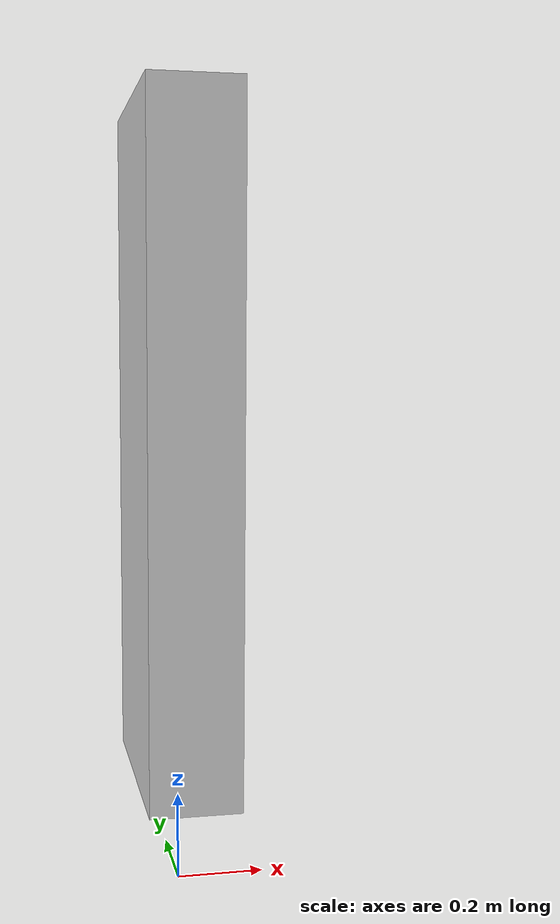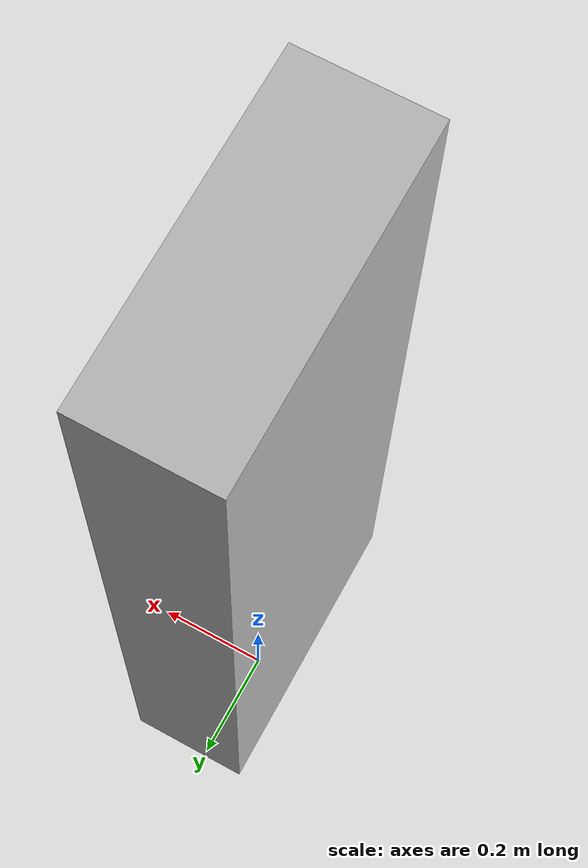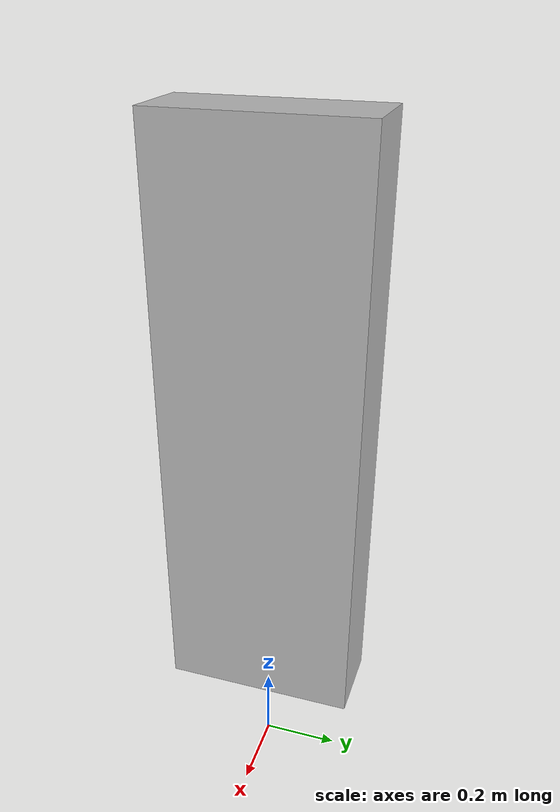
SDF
<?xml version='1.0'?>
<sdf version="1.6">
    <model name="child">
        <pose>0 0 1 0 0 0</pose>
        <link name="link">

        <gravity>0</gravity>
        <collision name="collision">
            <geometry>
            <box>
                <size>0.2 0.5 1.5 </size>
            </box>
            </geometry>
        </collision>

        <visual name="visual">
            <geometry>
            <box>
                <size>0.2 0.5 1.5</size>
            </box>
            </geometry>
        </visual>

            <inertial>
                <mass value="50"/>
            </inertial>

        </link>

        <plugin name="model_child" filename="libmodel_child.so">
            <velocity>0</velocity>
            <angle>0</angle>
        </plugin>
    </model>
</sdf>
